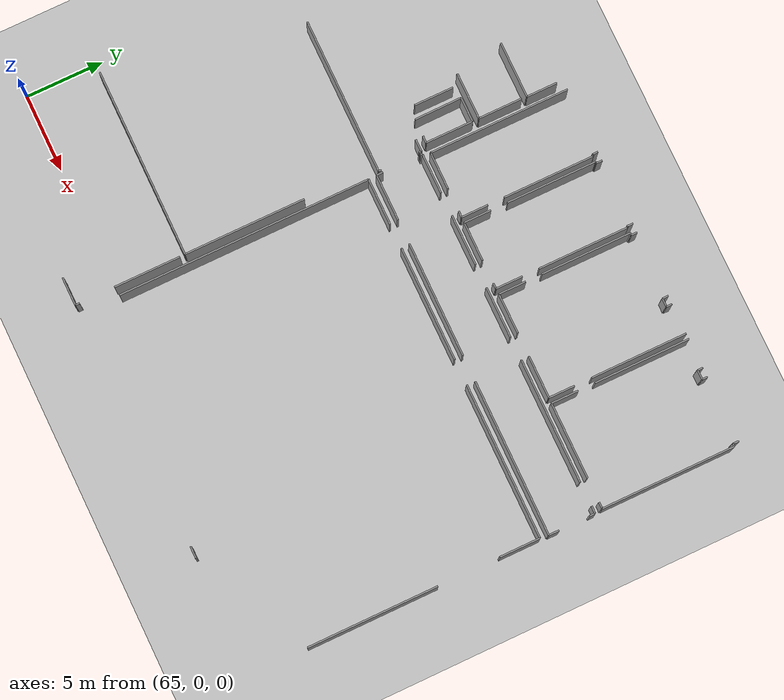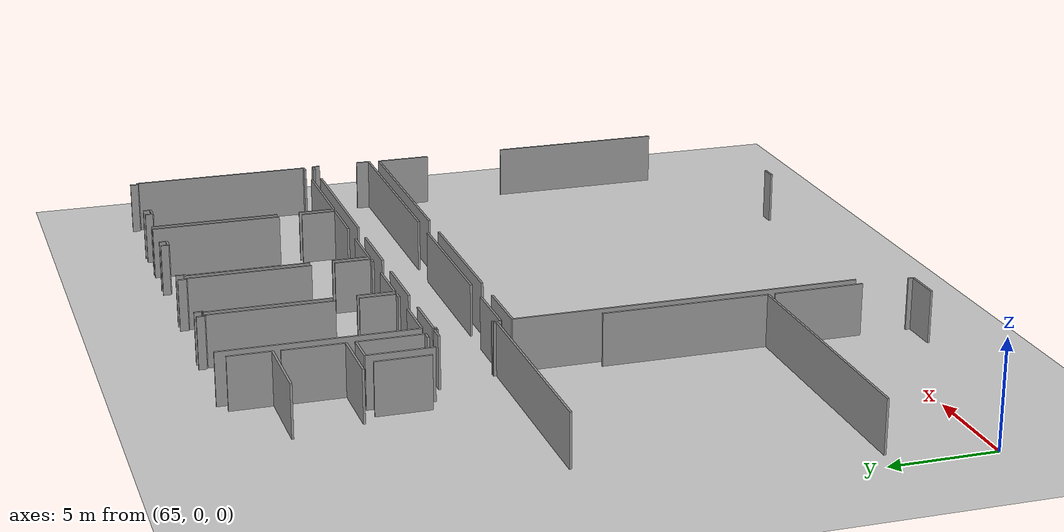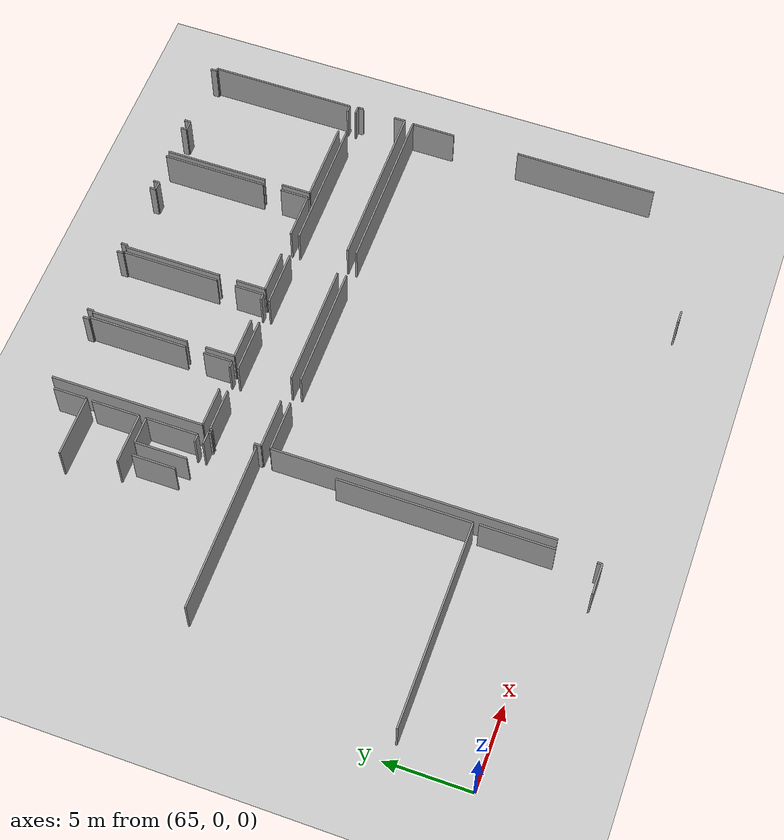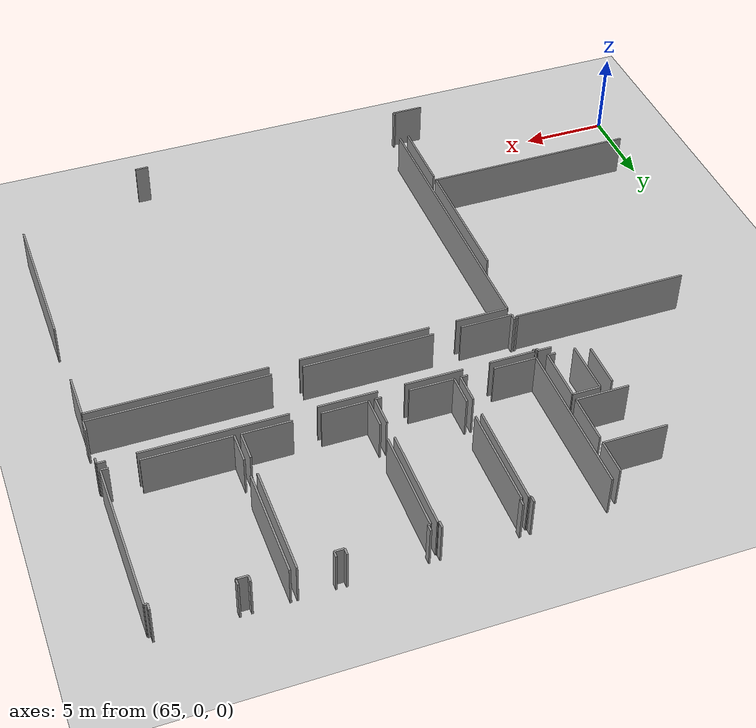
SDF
<sdf version="1.6">
 <world name="default">
  <model name="ground_plane">
   <static>1</static>
   <link name="link">
    <collision name="collision">
     <geometry><plane><normal>0 0 1</normal><size>100 100</size></plane></geometry>
     <surface><friction><ode><mu>100</mu><mu2>50</mu2></ode></friction></surface>
    </collision>
    <visual name="visual">
     <cast_shadows>0</cast_shadows>
     <geometry><plane><normal>0 0 1</normal><size>100 100</size></plane></geometry>
     <material>
      <script><uri>file://media/materials/scripts/gazebo.material</uri><name>Gazebo/Grey</name></script>
     </material>
    </visual>
   </link>
  </model>
  <model name="50010535_PLAN1">
   <static>1</static>
   <link name="Wall_648">
    <collision name="Wall_648_Collision">
     <geometry><box><size>1.98954276602 0.1 2.5</size></box></geometry>
     <pose>0.99477138301 0 1.25 0 0 0</pose>
    </collision>
    <visual name="Wall_648_Visual">
     <pose>0.99477138301 0 1.25 0 0 0</pose>
     <geometry><box><size>1.98954276602 0.1 2.5</size></box></geometry>
     <material>
      <script><uri>file://media/materials/scripts/gazebo.material</uri><name>Gazebo/Grey</name></script>
      <ambient>1 1 1 1</ambient>
     </material>
    </visual>
    <pose>180.918533954 -0.41320686391 0 0 0 -1.57079632679</pose>
   </link>
   <link name="Wall_649">
    <collision name="Wall_649_Collision">
     <geometry><box><size>3.6360171026 0.1 2.5</size></box></geometry>
     <pose>1.8180085513 0 1.25 0 0 0</pose>
    </collision>
    <visual name="Wall_649_Visual">
     <pose>1.8180085513 0 1.25 0 0 0</pose>
     <geometry><box><size>3.6360171026 0.1 2.5</size></box></geometry>
     <material>
      <script><uri>file://media/materials/scripts/gazebo.material</uri><name>Gazebo/Grey</name></script>
      <ambient>1 1 1 1</ambient>
     </material>
    </visual>
    <pose>180.918533954 -2.40274962993 0 0 0 3.14159265359</pose>
   </link>
   <link name="Wall_653">
    <collision name="Wall_653_Collision">
     <geometry><box><size>2.82866273197 0.1 2.5</size></box></geometry>
     <pose>1.41433136598 0 1.25 0 0 0</pose>
    </collision>
    <visual name="Wall_653_Visual">
     <pose>1.41433136598 0 1.25 0 0 0</pose>
     <geometry><box><size>2.82866273197 0.1 2.5</size></box></geometry>
     <material>
      <script><uri>file://media/materials/scripts/gazebo.material</uri><name>Gazebo/Grey</name></script>
      <ambient>1 1 1 1</ambient>
     </material>
    </visual>
    <pose>180.890071981 -2.74480156033 0 0 0 -1.57079632679</pose>
   </link>
   <link name="Wall_654">
    <collision name="Wall_654_Collision">
     <geometry><box><size>3.01519030768 0.1 2.5</size></box></geometry>
     <pose>1.50759515384 0 1.25 0 0 0</pose>
    </collision>
    <visual name="Wall_654_Visual">
     <pose>1.50759515384 0 1.25 0 0 0</pose>
     <geometry><box><size>3.01519030768 0.1 2.5</size></box></geometry>
     <material>
      <script><uri>file://media/materials/scripts/gazebo.material</uri><name>Gazebo/Grey</name></script>
      <ambient>1 1 1 1</ambient>
     </material>
    </visual>
    <pose>180.890071981 -5.57346429229 0 0 0 3.14159265359</pose>
   </link>
   <link name="Wall_666">
    <collision name="Wall_666_Collision">
     <geometry><box><size>2.55039611697 0.1 2.5</size></box></geometry>
     <pose>1.27519805849 0 1.25 0 0 0</pose>
    </collision>
    <visual name="Wall_666_Visual">
     <pose>1.27519805849 0 1.25 0 0 0</pose>
     <geometry><box><size>2.55039611697 0.1 2.5</size></box></geometry>
     <material>
      <script><uri>file://media/materials/scripts/gazebo.material</uri><name>Gazebo/Grey</name></script>
      <ambient>1 1 1 1</ambient>
     </material>
    </visual>
    <pose>178.525186941 -6.16989511 0 0 0 -1.57079632679</pose>
   </link>
   <link name="Wall_670">
    <collision name="Wall_670_Collision">
     <geometry><box><size>1.58955038976 0.1 2.5</size></box></geometry>
     <pose>0.794775194882 0 1.25 0 0 0</pose>
    </collision>
    <visual name="Wall_670_Visual">
     <pose>0.794775194882 0 1.25 0 0 0</pose>
     <geometry><box><size>1.58955038976 0.1 2.5</size></box></geometry>
     <material>
      <script><uri>file://media/materials/scripts/gazebo.material</uri><name>Gazebo/Grey</name></script>
      <ambient>1 1 1 1</ambient>
     </material>
    </visual>
    <pose>179.300521591 -5.99480314861 0 0 0 0.0</pose>
   </link>
   <link name="Wall_671">
    <collision name="Wall_671_Collision">
     <geometry><box><size>3.06957300687 0.1 2.5</size></box></geometry>
     <pose>1.53478650343 0 1.25 0 0 0</pose>
    </collision>
    <visual name="Wall_671_Visual">
     <pose>1.53478650343 0 1.25 0 0 0</pose>
     <geometry><box><size>3.06957300687 0.1 2.5</size></box></geometry>
     <material>
      <script><uri>file://media/materials/scripts/gazebo.material</uri><name>Gazebo/Grey</name></script>
      <ambient>1 1 1 1</ambient>
     </material>
    </visual>
    <pose>180.890071981 -5.99480314861 0 0 0 -1.57079632679</pose>
   </link>
   <link name="Wall_672">
    <collision name="Wall_672_Collision">
     <geometry><box><size>0.442431211603 0.1 2.5</size></box></geometry>
     <pose>0.221215605802 0 1.25 0 0 0</pose>
    </collision>
    <visual name="Wall_672_Visual">
     <pose>0.221215605802 0 1.25 0 0 0</pose>
     <geometry><box><size>0.442431211603 0.1 2.5</size></box></geometry>
     <material>
      <script><uri>file://media/materials/scripts/gazebo.material</uri><name>Gazebo/Grey</name></script>
      <ambient>1 1 1 1</ambient>
     </material>
    </visual>
    <pose>180.890071981 -9.06437615547 0 0 0 3.14159265359</pose>
   </link>
   <link name="Wall_673">
    <collision name="Wall_673_Collision">
     <geometry><box><size>3.06968460388 0.1 2.5</size></box></geometry>
     <pose>1.53484230194 0 1.25 0 0 0</pose>
    </collision>
    <visual name="Wall_673_Visual">
     <pose>1.53484230194 0 1.25 0 0 0</pose>
     <geometry><box><size>3.06968460388 0.1 2.5</size></box></geometry>
     <material>
      <script><uri>file://media/materials/scripts/gazebo.material</uri><name>Gazebo/Grey</name></script>
      <ambient>1 1 1 1</ambient>
     </material>
    </visual>
    <pose>179.326696442 -9.06437615547 0 0 0 1.57932331608</pose>
   </link>
   <link name="Wall_690">
    <collision name="Wall_690_Collision">
     <geometry><box><size>0.779400646748 0.1 2.5</size></box></geometry>
     <pose>0.389700323374 0 1.25 0 0 0</pose>
    </collision>
    <visual name="Wall_690_Visual">
     <pose>0.389700323374 0 1.25 0 0 0</pose>
     <geometry><box><size>0.779400646748 0.1 2.5</size></box></geometry>
     <material>
      <script><uri>file://media/materials/scripts/gazebo.material</uri><name>Gazebo/Grey</name></script>
      <ambient>1 1 1 1</ambient>
     </material>
    </visual>
    <pose>180.461109382 -9.54594258051 0 0 0 0.0</pose>
   </link>
   <link name="Wall_691">
    <collision name="Wall_691_Collision">
     <geometry><box><size>0.165943469947 0.1 2.5</size></box></geometry>
     <pose>0.0829717349733 0 1.25 0 0 0</pose>
    </collision>
    <visual name="Wall_691_Visual">
     <pose>0.0829717349733 0 1.25 0 0 0</pose>
     <geometry><box><size>0.165943469947 0.1 2.5</size></box></geometry>
     <material>
      <script><uri>file://media/materials/scripts/gazebo.material</uri><name>Gazebo/Grey</name></script>
      <ambient>1 1 1 1</ambient>
     </material>
    </visual>
    <pose>181.240510028 -9.54594258051 0 0 0 -1.57079632679</pose>
   </link>
   <link name="Wall_692">
    <collision name="Wall_692_Collision">
     <geometry><box><size>0.175854335686 0.1 2.5</size></box></geometry>
     <pose>0.087927167843 0 1.25 0 0 0</pose>
    </collision>
    <visual name="Wall_692_Visual">
     <pose>0.087927167843 0 1.25 0 0 0</pose>
     <geometry><box><size>0.175854335686 0.1 2.5</size></box></geometry>
     <material>
      <script><uri>file://media/materials/scripts/gazebo.material</uri><name>Gazebo/Grey</name></script>
      <ambient>1 1 1 1</ambient>
     </material>
    </visual>
    <pose>181.240510028 -12.1944308558 0 0 0 -1.57079632679</pose>
   </link>
   <link name="Wall_693">
    <collision name="Wall_693_Collision">
     <geometry><box><size>10.0801128314 0.1 2.5</size></box></geometry>
     <pose>5.0400564157 0 1.25 0 0 0</pose>
    </collision>
    <visual name="Wall_693_Visual">
     <pose>5.0400564157 0 1.25 0 0 0</pose>
     <geometry><box><size>10.0801128314 0.1 2.5</size></box></geometry>
     <material>
      <script><uri>file://media/materials/scripts/gazebo.material</uri><name>Gazebo/Grey</name></script>
      <ambient>1 1 1 1</ambient>
     </material>
    </visual>
    <pose>181.240510028 -12.3702851915 0 0 0 3.14159265359</pose>
   </link>
   <link name="Wall_701">
    <collision name="Wall_701_Collision">
     <geometry><box><size>7.83568292853 0.1 2.5</size></box></geometry>
     <pose>3.91784146427 0 1.25 0 0 0</pose>
    </collision>
    <visual name="Wall_701_Visual">
     <pose>3.91784146427 0 1.25 0 0 0</pose>
     <geometry><box><size>7.83568292853 0.1 2.5</size></box></geometry>
     <material>
      <script><uri>file://media/materials/scripts/gazebo.material</uri><name>Gazebo/Grey</name></script>
      <ambient>1 1 1 1</ambient>
     </material>
    </visual>
    <pose>180.895154476 -17.1038671436 0 0 0 -1.57079632679</pose>
   </link>
   <link name="Wall_702">
    <collision name="Wall_702_Collision">
     <geometry><box><size>12.2330578197 0.1 2.5</size></box></geometry>
     <pose>6.11652890987 0 1.25 0 0 0</pose>
    </collision>
    <visual name="Wall_702_Visual">
     <pose>6.11652890987 0 1.25 0 0 0</pose>
     <geometry><box><size>12.2330578197 0.1 2.5</size></box></geometry>
     <material>
      <script><uri>file://media/materials/scripts/gazebo.material</uri><name>Gazebo/Grey</name></script>
      <ambient>1 1 1 1</ambient>
     </material>
    </visual>
    <pose>180.895154476 -24.9395500721 0 0 0 3.14159265359</pose>
   </link>
   <link name="Wall_756">
    <collision name="Wall_756_Collision">
     <geometry><box><size>3.02332230008 0.1 2.5</size></box></geometry>
     <pose>1.51166115004 0 1.25 0 0 0</pose>
    </collision>
    <visual name="Wall_756_Visual">
     <pose>1.51166115004 0 1.25 0 0 0</pose>
     <geometry><box><size>3.02332230008 0.1 2.5</size></box></geometry>
     <material>
      <script><uri>file://media/materials/scripts/gazebo.material</uri><name>Gazebo/Grey</name></script>
      <ambient>1 1 1 1</ambient>
     </material>
    </visual>
    <pose>181.440252092 -13.1235109877 0 0 0 0.0</pose>
   </link>
   <link name="Wall_757">
    <collision name="Wall_757_Collision">
     <geometry><box><size>7.38689859787 0.1 2.5</size></box></geometry>
     <pose>3.69344929893 0 1.25 0 0 0</pose>
    </collision>
    <visual name="Wall_757_Visual">
     <pose>3.69344929893 0 1.25 0 0 0</pose>
     <geometry><box><size>7.38689859787 0.1 2.5</size></box></geometry>
     <material>
      <script><uri>file://media/materials/scripts/gazebo.material</uri><name>Gazebo/Grey</name></script>
      <ambient>1 1 1 1</ambient>
     </material>
    </visual>
    <pose>186.050583534 -13.1235109877 0 0 0 0.0</pose>
   </link>
   <link name="Wall_758">
    <collision name="Wall_758_Collision">
     <geometry><box><size>10.0325915008 0.1 2.5</size></box></geometry>
     <pose>5.0162957504 0 1.25 0 0 0</pose>
    </collision>
    <visual name="Wall_758_Visual">
     <pose>5.0162957504 0 1.25 0 0 0</pose>
     <geometry><box><size>10.0325915008 0.1 2.5</size></box></geometry>
     <material>
      <script><uri>file://media/materials/scripts/gazebo.material</uri><name>Gazebo/Grey</name></script>
      <ambient>1 1 1 1</ambient>
     </material>
    </visual>
    <pose>195.10860657 -13.1235109877 0 0 0 0.0</pose>
   </link>
   <link name="Wall_759">
    <collision name="Wall_759_Collision">
     <geometry><box><size>2.62510879716 0.1 2.5</size></box></geometry>
     <pose>1.31255439858 0 1.25 0 0 0</pose>
    </collision>
    <visual name="Wall_759_Visual">
     <pose>1.31255439858 0 1.25 0 0 0</pose>
     <geometry><box><size>2.62510879716 0.1 2.5</size></box></geometry>
     <material>
      <script><uri>file://media/materials/scripts/gazebo.material</uri><name>Gazebo/Grey</name></script>
      <ambient>1 1 1 1</ambient>
     </material>
    </visual>
    <pose>205.141198071 -13.1235109877 0 0 0 -1.57079632679</pose>
   </link>
   <link name="Wall_760">
    <collision name="Wall_760_Collision">
     <geometry><box><size>8.45015660438 0.1 2.5</size></box></geometry>
     <pose>4.22507830219 0 1.25 0 0 0</pose>
    </collision>
    <visual name="Wall_760_Visual">
     <pose>4.22507830219 0 1.25 0 0 0</pose>
     <geometry><box><size>8.45015660438 0.1 2.5</size></box></geometry>
     <material>
      <script><uri>file://media/materials/scripts/gazebo.material</uri><name>Gazebo/Grey</name></script>
      <ambient>1 1 1 1</ambient>
     </material>
    </visual>
    <pose>205.141198071 -19.769381778 0 0 0 -1.57079632679</pose>
   </link>
   <link name="Wall_762">
    <collision name="Wall_762_Collision">
     <geometry><box><size>0.769235656245 0.1 2.5</size></box></geometry>
     <pose>0.384617828123 0 1.25 0 0 0</pose>
    </collision>
    <visual name="Wall_762_Visual">
     <pose>0.384617828123 0 1.25 0 0 0</pose>
     <geometry><box><size>0.769235656245 0.1 2.5</size></box></geometry>
     <material>
      <script><uri>file://media/materials/scripts/gazebo.material</uri><name>Gazebo/Grey</name></script>
      <ambient>1 1 1 1</ambient>
     </material>
    </visual>
    <pose>197.611735482 -31.9127335565 0 0 0 3.14159265359</pose>
   </link>
   <link name="Wall_763">
    <collision name="Wall_763_Collision">
     <geometry><box><size>16.3697427509 0.1 2.5</size></box></geometry>
     <pose>8.18487137546 0 1.25 0 0 0</pose>
    </collision>
    <visual name="Wall_763_Visual">
     <pose>8.18487137546 0 1.25 0 0 0</pose>
     <geometry><box><size>16.3697427509 0.1 2.5</size></box></geometry>
     <material>
      <script><uri>file://media/materials/scripts/gazebo.material</uri><name>Gazebo/Grey</name></script>
      <ambient>1 1 1 1</ambient>
     </material>
    </visual>
    <pose>181.477354307 -29.4932116923 0 0 0 1.57306284055</pose>
   </link>
   <link name="Wall_766">
    <collision name="Wall_766_Collision">
     <geometry><box><size>4.28047750043 0.1 2.5</size></box></geometry>
     <pose>2.14023875021 0 1.25 0 0 0</pose>
    </collision>
    <visual name="Wall_766_Visual">
     <pose>2.14023875021 0 1.25 0 0 0</pose>
     <geometry><box><size>4.28047750043 0.1 2.5</size></box></geometry>
     <material>
      <script><uri>file://media/materials/scripts/gazebo.material</uri><name>Gazebo/Grey</name></script>
      <ambient>1 1 1 1</ambient>
     </material>
    </visual>
    <pose>180.908368964 -25.276773632 0 0 0 -1.57079632679</pose>
   </link>
   <link name="Wall_767">
    <collision name="Wall_767_Collision">
     <geometry><box><size>0.270896996881 0.1 2.5</size></box></geometry>
     <pose>0.13544849844 0 1.25 0 0 0</pose>
    </collision>
    <visual name="Wall_767_Visual">
     <pose>0.13544849844 0 1.25 0 0 0</pose>
     <geometry><box><size>0.270896996881 0.1 2.5</size></box></geometry>
     <material>
      <script><uri>file://media/materials/scripts/gazebo.material</uri><name>Gazebo/Grey</name></script>
      <ambient>1 1 1 1</ambient>
     </material>
    </visual>
    <pose>180.908368964 -31.8329383811 0 0 0 -1.57079632679</pose>
   </link>
   <link name="Wall_768">
    <collision name="Wall_768_Collision">
     <geometry><box><size>1.82639466846 0.1 2.5</size></box></geometry>
     <pose>0.913197334231 0 1.25 0 0 0</pose>
    </collision>
    <visual name="Wall_768_Visual">
     <pose>0.913197334231 0 1.25 0 0 0</pose>
     <geometry><box><size>1.82639466846 0.1 2.5</size></box></geometry>
     <material>
      <script><uri>file://media/materials/scripts/gazebo.material</uri><name>Gazebo/Grey</name></script>
      <ambient>1 1 1 1</ambient>
     </material>
    </visual>
    <pose>180.908368964 -32.103835378 0 0 0 3.14159265359</pose>
   </link>
   <link name="Wall_774">
    <collision name="Wall_774_Collision">
     <geometry><box><size>9.06412203071 0.1 2.5</size></box></geometry>
     <pose>4.53206101536 0 1.25 0 0 0</pose>
    </collision>
    <visual name="Wall_774_Visual">
     <pose>4.53206101536 0 1.25 0 0 0</pose>
     <geometry><box><size>9.06412203071 0.1 2.5</size></box></geometry>
     <material>
      <script><uri>file://media/materials/scripts/gazebo.material</uri><name>Gazebo/Grey</name></script>
      <ambient>1 1 1 1</ambient>
     </material>
    </visual>
    <pose>181.552829362 -9.07860714218 0 0 0 1.57079632679</pose>
   </link>
   <link name="Wall_775">
    <collision name="Wall_775_Collision">
     <geometry><box><size>0.370259779039 0.1 2.5</size></box></geometry>
     <pose>0.185129889519 0 1.25 0 0 0</pose>
    </collision>
    <visual name="Wall_775_Visual">
     <pose>0.185129889519 0 1.25 0 0 0</pose>
     <geometry><box><size>0.370259779039 0.1 2.5</size></box></geometry>
     <material>
      <script><uri>file://media/materials/scripts/gazebo.material</uri><name>Gazebo/Grey</name></script>
      <ambient>1 1 1 1</ambient>
     </material>
    </visual>
    <pose>185.763676677 -0.0144851114655 0 0 0 -1.57079632679</pose>
   </link>
   <link name="Wall_776">
    <collision name="Wall_776_Collision">
     <geometry><box><size>0.114102018386 0.1 2.5</size></box></geometry>
     <pose>0.057051009193 0 1.25 0 0 0</pose>
    </collision>
    <visual name="Wall_776_Visual">
     <pose>0.057051009193 0 1.25 0 0 0</pose>
     <geometry><box><size>0.114102018386 0.1 2.5</size></box></geometry>
     <material>
      <script><uri>file://media/materials/scripts/gazebo.material</uri><name>Gazebo/Grey</name></script>
      <ambient>1 1 1 1</ambient>
     </material>
    </visual>
    <pose>185.763676677 -0.384744890504 0 0 0 0.0</pose>
   </link>
   <link name="Wall_777">
    <collision name="Wall_777_Collision">
     <geometry><box><size>5.88603775023 0.1 2.5</size></box></geometry>
     <pose>2.94301887512 0 1.25 0 0 0</pose>
    </collision>
    <visual name="Wall_777_Visual">
     <pose>2.94301887512 0 1.25 0 0 0</pose>
     <geometry><box><size>5.88603775023 0.1 2.5</size></box></geometry>
     <material>
      <script><uri>file://media/materials/scripts/gazebo.material</uri><name>Gazebo/Grey</name></script>
      <ambient>1 1 1 1</ambient>
     </material>
    </visual>
    <pose>185.877778695 -0.384744890504 0 0 0 -1.57079632679</pose>
   </link>
   <link name="Wall_778">
    <collision name="Wall_778_Collision">
     <geometry><box><size>1.72881075964 0.1 2.5</size></box></geometry>
     <pose>0.864405379821 0 1.25 0 0 0</pose>
    </collision>
    <visual name="Wall_778_Visual">
     <pose>0.864405379821 0 1.25 0 0 0</pose>
     <geometry><box><size>1.72881075964 0.1 2.5</size></box></geometry>
     <material>
      <script><uri>file://media/materials/scripts/gazebo.material</uri><name>Gazebo/Grey</name></script>
      <ambient>1 1 1 1</ambient>
     </material>
    </visual>
    <pose>185.877778695 -7.35742012541 0 0 0 -1.57079632679</pose>
   </link>
   <link name="Wall_779">
    <collision name="Wall_779_Collision">
     <geometry><box><size>0.398975877207 0.1 2.5</size></box></geometry>
     <pose>0.199487938603 0 1.25 0 0 0</pose>
    </collision>
    <visual name="Wall_779_Visual">
     <pose>0.199487938603 0 1.25 0 0 0</pose>
     <geometry><box><size>0.398975877207 0.1 2.5</size></box></geometry>
     <material>
      <script><uri>file://media/materials/scripts/gazebo.material</uri><name>Gazebo/Grey</name></script>
      <ambient>1 1 1 1</ambient>
     </material>
    </visual>
    <pose>185.877778695 -9.08623088505 0 0 0 3.14159265359</pose>
   </link>
   <link name="Wall_780">
    <collision name="Wall_780_Collision">
     <geometry><box><size>2.42436222174 0.1 2.5</size></box></geometry>
     <pose>1.21218111087 0 1.25 0 0 0</pose>
    </collision>
    <visual name="Wall_780_Visual">
     <pose>1.21218111087 0 1.25 0 0 0</pose>
     <geometry><box><size>2.42436222174 0.1 2.5</size></box></geometry>
     <material>
      <script><uri>file://media/materials/scripts/gazebo.material</uri><name>Gazebo/Grey</name></script>
      <ambient>1 1 1 1</ambient>
     </material>
    </visual>
    <pose>183.977179596 -9.08623088505 0 0 0 3.13844800987</pose>
   </link>
   <link name="Wall_781">
    <collision name="Wall_781_Collision">
     <geometry><box><size>1.74837836636 0.1 2.5</size></box></geometry>
     <pose>0.874189183179 0 1.25 0 0 0</pose>
    </collision>
    <visual name="Wall_781_Visual">
     <pose>0.874189183179 0 1.25 0 0 0</pose>
     <geometry><box><size>1.74837836636 0.1 2.5</size></box></geometry>
     <material>
      <script><uri>file://media/materials/scripts/gazebo.material</uri><name>Gazebo/Grey</name></script>
      <ambient>1 1 1 1</ambient>
     </material>
    </visual>
    <pose>186.237619359 -9.08089426504 0 0 0 1.57079632679</pose>
   </link>
   <link name="Wall_782">
    <collision name="Wall_782_Collision">
     <geometry><box><size>5.81666169006 0.1 2.5</size></box></geometry>
     <pose>2.90833084503 0 1.25 0 0 0</pose>
    </collision>
    <visual name="Wall_782_Visual">
     <pose>2.90833084503 0 1.25 0 0 0</pose>
     <geometry><box><size>5.81666169006 0.1 2.5</size></box></geometry>
     <material>
      <script><uri>file://media/materials/scripts/gazebo.material</uri><name>Gazebo/Grey</name></script>
      <ambient>1 1 1 1</ambient>
     </material>
    </visual>
    <pose>186.237619359 -6.22021181299 0 0 0 1.57079632679</pose>
   </link>
   <link name="Wall_783">
    <collision name="Wall_783_Collision">
     <geometry><box><size>0.099871031683 0.1 2.5</size></box></geometry>
     <pose>0.0499355158415 0 1.25 0 0 0</pose>
    </collision>
    <visual name="Wall_783_Visual">
     <pose>0.0499355158415 0 1.25 0 0 0</pose>
     <geometry><box><size>0.099871031683 0.1 2.5</size></box></geometry>
     <material>
      <script><uri>file://media/materials/scripts/gazebo.material</uri><name>Gazebo/Grey</name></script>
      <ambient>1 1 1 1</ambient>
     </material>
    </visual>
    <pose>186.237619359 -0.403550122933 0 0 0 0.0</pose>
   </link>
   <link name="Wall_784">
    <collision name="Wall_784_Collision">
     <geometry><box><size>0.390081510518 0.1 2.5</size></box></geometry>
     <pose>0.195040755259 0 1.25 0 0 0</pose>
    </collision>
    <visual name="Wall_784_Visual">
     <pose>0.195040755259 0 1.25 0 0 0</pose>
     <geometry><box><size>0.390081510518 0.1 2.5</size></box></geometry>
     <material>
      <script><uri>file://media/materials/scripts/gazebo.material</uri><name>Gazebo/Grey</name></script>
      <ambient>1 1 1 1</ambient>
     </material>
    </visual>
    <pose>186.337490391 -0.403550122933 0 0 0 1.57079632679</pose>
   </link>
   <link name="Wall_785">
    <collision name="Wall_785_Collision">
     <geometry><box><size>0.392368633381 0.1 2.5</size></box></geometry>
     <pose>0.19618431669 0 1.25 0 0 0</pose>
    </collision>
    <visual name="Wall_785_Visual">
     <pose>0.19618431669 0 1.25 0 0 0</pose>
     <geometry><box><size>0.392368633381 0.1 2.5</size></box></geometry>
     <material>
      <script><uri>file://media/materials/scripts/gazebo.material</uri><name>Gazebo/Grey</name></script>
      <ambient>1 1 1 1</ambient>
     </material>
    </visual>
    <pose>190.564855816 -0.0134686124153 0 0 0 -1.57079632679</pose>
   </link>
   <link name="Wall_786">
    <collision name="Wall_786_Collision">
     <geometry><box><size>0.0785245516286 0.1 2.5</size></box></geometry>
     <pose>0.0392622758143 0 1.25 0 0 0</pose>
    </collision>
    <visual name="Wall_786_Visual">
     <pose>0.0392622758143 0 1.25 0 0 0</pose>
     <geometry><box><size>0.0785245516286 0.1 2.5</size></box></geometry>
     <material>
      <script><uri>file://media/materials/scripts/gazebo.material</uri><name>Gazebo/Grey</name></script>
      <ambient>1 1 1 1</ambient>
     </material>
    </visual>
    <pose>190.564855816 -0.405837245796 0 0 0 0.0</pose>
   </link>
   <link name="Wall_787">
    <collision name="Wall_787_Collision">
     <geometry><box><size>5.84232829107 0.1 2.5</size></box></geometry>
     <pose>2.92116414554 0 1.25 0 0 0</pose>
    </collision>
    <visual name="Wall_787_Visual">
     <pose>2.92116414554 0 1.25 0 0 0</pose>
     <geometry><box><size>5.84232829107 0.1 2.5</size></box></geometry>
     <material>
      <script><uri>file://media/materials/scripts/gazebo.material</uri><name>Gazebo/Grey</name></script>
      <ambient>1 1 1 1</ambient>
     </material>
    </visual>
    <pose>190.643380368 -0.405837245796 0 0 0 -1.57079632679</pose>
   </link>
   <link name="Wall_788">
    <collision name="Wall_788_Collision">
     <geometry><box><size>1.73745100157 0.1 2.5</size></box></geometry>
     <pose>0.868725500785 0 1.25 0 0 0</pose>
    </collision>
    <visual name="Wall_788_Visual">
     <pose>0.868725500785 0 1.25 0 0 0</pose>
     <geometry><box><size>1.73745100157 0.1 2.5</size></box></geometry>
     <material>
      <script><uri>file://media/materials/scripts/gazebo.material</uri><name>Gazebo/Grey</name></script>
      <ambient>1 1 1 1</ambient>
     </material>
    </visual>
    <pose>190.643380368 -7.34877988348 0 0 0 -1.57079632679</pose>
   </link>
   <link name="Wall_789">
    <collision name="Wall_789_Collision">
     <geometry><box><size>0.364160784737 0.1 2.5</size></box></geometry>
     <pose>0.182080392369 0 1.25 0 0 0</pose>
    </collision>
    <visual name="Wall_789_Visual">
     <pose>0.182080392369 0 1.25 0 0 0</pose>
     <geometry><box><size>0.364160784737 0.1 2.5</size></box></geometry>
     <material>
      <script><uri>file://media/materials/scripts/gazebo.material</uri><name>Gazebo/Grey</name></script>
      <ambient>1 1 1 1</ambient>
     </material>
    </visual>
    <pose>190.643380368 -9.08623088505 0 0 0 3.14159265359</pose>
   </link>
   <link name="Wall_790">
    <collision name="Wall_790_Collision">
     <geometry><box><size>2.53439187555 0.1 2.5</size></box></geometry>
     <pose>1.26719593777 0 1.25 0 0 0</pose>
    </collision>
    <visual name="Wall_790_Visual">
     <pose>1.26719593777 0 1.25 0 0 0</pose>
     <geometry><box><size>2.53439187555 0.1 2.5</size></box></geometry>
     <material>
      <script><uri>file://media/materials/scripts/gazebo.material</uri><name>Gazebo/Grey</name></script>
      <ambient>1 1 1 1</ambient>
     </material>
    </visual>
    <pose>188.772005616 -9.08623088505 0 0 0 3.13948697135</pose>
   </link>
   <link name="Wall_791">
    <collision name="Wall_791_Collision">
     <geometry><box><size>1.7603222302 0.1 2.5</size></box></geometry>
     <pose>0.880161115099 0 1.25 0 0 0</pose>
    </collision>
    <visual name="Wall_791_Visual">
     <pose>0.880161115099 0 1.25 0 0 0</pose>
     <geometry><box><size>1.7603222302 0.1 2.5</size></box></geometry>
     <material>
      <script><uri>file://media/materials/scripts/gazebo.material</uri><name>Gazebo/Grey</name></script>
      <ambient>1 1 1 1</ambient>
     </material>
    </visual>
    <pose>191.009828275 -9.06971277549 0 0 0 1.57079632679</pose>
   </link>
   <link name="Wall_792">
    <collision name="Wall_792_Collision">
     <geometry><box><size>5.83953291869 0.1 2.5</size></box></geometry>
     <pose>2.91976645934 0 1.25 0 0 0</pose>
    </collision>
    <visual name="Wall_792_Visual">
     <pose>2.91976645934 0 1.25 0 0 0</pose>
     <geometry><box><size>5.83953291869 0.1 2.5</size></box></geometry>
     <material>
      <script><uri>file://media/materials/scripts/gazebo.material</uri><name>Gazebo/Grey</name></script>
      <ambient>1 1 1 1</ambient>
     </material>
    </visual>
    <pose>191.009828275 -6.24587841401 0 0 0 1.57079632679</pose>
   </link>
   <link name="Wall_793">
    <collision name="Wall_793_Collision">
     <geometry><box><size>0.138752120353 0.1 2.5</size></box></geometry>
     <pose>0.0693760601767 0 1.25 0 0 0</pose>
    </collision>
    <visual name="Wall_793_Visual">
     <pose>0.0693760601767 0 1.25 0 0 0</pose>
     <geometry><box><size>0.138752120353 0.1 2.5</size></box></geometry>
     <material>
      <script><uri>file://media/materials/scripts/gazebo.material</uri><name>Gazebo/Grey</name></script>
      <ambient>1 1 1 1</ambient>
     </material>
    </visual>
    <pose>191.009828275 -0.406345495321 0 0 0 0.0</pose>
   </link>
   <link name="Wall_794">
    <collision name="Wall_794_Collision">
     <geometry><box><size>0.384744890504 0.1 2.5</size></box></geometry>
     <pose>0.192372445252 0 1.25 0 0 0</pose>
    </collision>
    <visual name="Wall_794_Visual">
     <pose>0.192372445252 0 1.25 0 0 0</pose>
     <geometry><box><size>0.384744890504 0.1 2.5</size></box></geometry>
     <material>
      <script><uri>file://media/materials/scripts/gazebo.material</uri><name>Gazebo/Grey</name></script>
      <ambient>1 1 1 1</ambient>
     </material>
    </visual>
    <pose>191.148580396 -0.406345495321 0 0 0 1.57079632679</pose>
   </link>
   <link name="Wall_795">
    <collision name="Wall_795_Collision">
     <geometry><box><size>0.367718531413 0.1 2.5</size></box></geometry>
     <pose>0.183859265706 0 1.25 0 0 0</pose>
    </collision>
    <visual name="Wall_795_Visual">
     <pose>0.183859265706 0 1.25 0 0 0</pose>
     <geometry><box><size>0.367718531413 0.1 2.5</size></box></geometry>
     <material>
      <script><uri>file://media/materials/scripts/gazebo.material</uri><name>Gazebo/Grey</name></script>
      <ambient>1 1 1 1</ambient>
     </material>
    </visual>
    <pose>195.384840187 -0.0216006048169 0 0 0 -1.57079632679</pose>
   </link>
   <link name="Wall_796">
    <collision name="Wall_796_Collision">
     <geometry><box><size>0.536965623273 0.1 2.5</size></box></geometry>
     <pose>0.268482811636 0 1.25 0 0 0</pose>
    </collision>
    <visual name="Wall_796_Visual">
     <pose>0.268482811636 0 1.25 0 0 0</pose>
     <geometry><box><size>0.536965623273 0.1 2.5</size></box></geometry>
     <material>
      <script><uri>file://media/materials/scripts/gazebo.material</uri><name>Gazebo/Grey</name></script>
      <ambient>1 1 1 1</ambient>
     </material>
    </visual>
    <pose>195.384840187 -0.38931913623 0 0 0 0.0</pose>
   </link>
   <link name="Wall_797">
    <collision name="Wall_797_Collision">
     <geometry><box><size>0.355266418048 0.1 2.5</size></box></geometry>
     <pose>0.177633209024 0 1.25 0 0 0</pose>
    </collision>
    <visual name="Wall_797_Visual">
     <pose>0.177633209024 0 1.25 0 0 0</pose>
     <geometry><box><size>0.355266418048 0.1 2.5</size></box></geometry>
     <material>
      <script><uri>file://media/materials/scripts/gazebo.material</uri><name>Gazebo/Grey</name></script>
      <ambient>1 1 1 1</ambient>
     </material>
    </visual>
    <pose>195.921805811 -0.38931913623 0 0 0 1.57079632679</pose>
   </link>
   <link name="Wall_798">
    <collision name="Wall_798_Collision">
     <geometry><box><size>6.21919531394 0.1 2.5</size></box></geometry>
     <pose>3.10959765697 0 1.25 0 0 0</pose>
    </collision>
    <visual name="Wall_798_Visual">
     <pose>3.10959765697 0 1.25 0 0 0</pose>
     <geometry><box><size>6.21919531394 0.1 2.5</size></box></geometry>
     <material>
      <script><uri>file://media/materials/scripts/gazebo.material</uri><name>Gazebo/Grey</name></script>
      <ambient>1 1 1 1</ambient>
     </material>
    </visual>
    <pose>197.869163866 -0.034052718182 0 0 0 -1.57079632679</pose>
   </link>
   <link name="Wall_799">
    <collision name="Wall_799_Collision">
     <geometry><box><size>1.68611779953 0.1 2.5</size></box></geometry>
     <pose>0.843058899767 0 1.25 0 0 0</pose>
    </collision>
    <visual name="Wall_799_Visual">
     <pose>0.843058899767 0 1.25 0 0 0</pose>
     <geometry><box><size>1.68611779953 0.1 2.5</size></box></geometry>
     <material>
      <script><uri>file://media/materials/scripts/gazebo.material</uri><name>Gazebo/Grey</name></script>
      <ambient>1 1 1 1</ambient>
     </material>
    </visual>
    <pose>197.869163866 -7.3764794826 0 0 0 -1.57079632679</pose>
   </link>
   <link name="Wall_800">
    <collision name="Wall_800_Collision">
     <geometry><box><size>2.75013818034 0.1 2.5</size></box></geometry>
     <pose>1.37506909017 0 1.25 0 0 0</pose>
    </collision>
    <visual name="Wall_800_Visual">
     <pose>1.37506909017 0 1.25 0 0 0</pose>
     <geometry><box><size>2.75013818034 0.1 2.5</size></box></geometry>
     <material>
      <script><uri>file://media/materials/scripts/gazebo.material</uri><name>Gazebo/Grey</name></script>
      <ambient>1 1 1 1</ambient>
     </material>
    </visual>
    <pose>197.869163866 -9.06259728214 0 0 0 3.14159265359</pose>
   </link>
   <link name="Wall_801">
    <collision name="Wall_801_Collision">
     <geometry><box><size>2.59081172535 0.1 2.5</size></box></geometry>
     <pose>1.29540586268 0 1.25 0 0 0</pose>
    </collision>
    <visual name="Wall_801_Visual">
     <pose>1.29540586268 0 1.25 0 0 0</pose>
     <geometry><box><size>2.59081172535 0.1 2.5</size></box></geometry>
     <material>
      <script><uri>file://media/materials/scripts/gazebo.material</uri><name>Gazebo/Grey</name></script>
      <ambient>1 1 1 1</ambient>
     </material>
    </visual>
    <pose>193.600630229 -9.06259728214 0 0 0 -3.13884621616</pose>
   </link>
   <link name="Wall_802">
    <collision name="Wall_802_Collision">
     <geometry><box><size>1.74685361778 0.1 2.5</size></box></geometry>
     <pose>0.873426808892 0 1.25 0 0 0</pose>
    </collision>
    <visual name="Wall_802_Visual">
     <pose>0.873426808892 0 1.25 0 0 0</pose>
     <geometry><box><size>1.74685361778 0.1 2.5</size></box></geometry>
     <material>
      <script><uri>file://media/materials/scripts/gazebo.material</uri><name>Gazebo/Grey</name></script>
      <ambient>1 1 1 1</ambient>
     </material>
    </visual>
    <pose>198.226463282 -9.0669174031 0 0 0 1.57079632679</pose>
   </link>
   <link name="Wall_803">
    <collision name="Wall_803_Collision">
     <geometry><box><size>6.18717559386 0.1 2.5</size></box></geometry>
     <pose>3.09358779693 0 1.25 0 0 0</pose>
    </collision>
    <visual name="Wall_803_Visual">
     <pose>3.09358779693 0 1.25 0 0 0</pose>
     <geometry><box><size>6.18717559386 0.1 2.5</size></box></geometry>
     <material>
      <script><uri>file://media/materials/scripts/gazebo.material</uri><name>Gazebo/Grey</name></script>
      <ambient>1 1 1 1</ambient>
     </material>
    </visual>
    <pose>198.226463282 -6.21716231584 0 0 0 1.57079632679</pose>
   </link>
   <link name="Wall_804">
    <collision name="Wall_804_Collision">
     <geometry><box><size>0.355012293285 0.1 2.5</size></box></geometry>
     <pose>0.177506146643 0 1.25 0 0 0</pose>
    </collision>
    <visual name="Wall_804_Visual">
     <pose>0.177506146643 0 1.25 0 0 0</pose>
     <geometry><box><size>0.355012293285 0.1 2.5</size></box></geometry>
     <material>
      <script><uri>file://media/materials/scripts/gazebo.material</uri><name>Gazebo/Grey</name></script>
      <ambient>1 1 1 1</ambient>
     </material>
    </visual>
    <pose>200.1334155 -0.0299867219812 0 0 0 -1.57079632679</pose>
   </link>
   <link name="Wall_805">
    <collision name="Wall_805_Collision">
     <geometry><box><size>0.60634168345 0.1 2.5</size></box></geometry>
     <pose>0.303170841725 0 1.25 0 0 0</pose>
    </collision>
    <visual name="Wall_805_Visual">
     <pose>0.303170841725 0 1.25 0 0 0</pose>
     <geometry><box><size>0.60634168345 0.1 2.5</size></box></geometry>
     <material>
      <script><uri>file://media/materials/scripts/gazebo.material</uri><name>Gazebo/Grey</name></script>
      <ambient>1 1 1 1</ambient>
     </material>
    </visual>
    <pose>200.1334155 -0.384999015267 0 0 0 0.0</pose>
   </link>
   <link name="Wall_806">
    <collision name="Wall_806_Collision">
     <geometry><box><size>0.360603038062 0.1 2.5</size></box></geometry>
     <pose>0.180301519031 0 1.25 0 0 0</pose>
    </collision>
    <visual name="Wall_806_Visual">
     <pose>0.180301519031 0 1.25 0 0 0</pose>
     <geometry><box><size>0.360603038062 0.1 2.5</size></box></geometry>
     <material>
      <script><uri>file://media/materials/scripts/gazebo.material</uri><name>Gazebo/Grey</name></script>
      <ambient>1 1 1 1</ambient>
     </material>
    </visual>
    <pose>200.739757184 -0.384999015267 0 0 0 1.57079632679</pose>
   </link>
   <link name="Wall_807">
    <collision name="Wall_807_Collision">
     <geometry><box><size>0.371276278089 0.1 2.5</size></box></geometry>
     <pose>0.185638139044 0 1.25 0 0 0</pose>
    </collision>
    <visual name="Wall_807_Visual">
     <pose>0.185638139044 0 1.25 0 0 0</pose>
     <geometry><box><size>0.371276278089 0.1 2.5</size></box></geometry>
     <material>
      <script><uri>file://media/materials/scripts/gazebo.material</uri><name>Gazebo/Grey</name></script>
      <ambient>1 1 1 1</ambient>
     </material>
    </visual>
    <pose>204.957974117 -0.024395977205 0 0 0 -1.57079632679</pose>
   </link>
   <link name="Wall_808">
    <collision name="Wall_808_Collision">
     <geometry><box><size>0.173567212823 0.1 2.5</size></box></geometry>
     <pose>0.0867836064116 0 1.25 0 0 0</pose>
    </collision>
    <visual name="Wall_808_Visual">
     <pose>0.0867836064116 0 1.25 0 0 0</pose>
     <geometry><box><size>0.173567212823 0.1 2.5</size></box></geometry>
     <material>
      <script><uri>file://media/materials/scripts/gazebo.material</uri><name>Gazebo/Grey</name></script>
      <ambient>1 1 1 1</ambient>
     </material>
    </visual>
    <pose>204.957974117 -0.395672255294 0 0 0 0.0</pose>
   </link>
   <link name="Wall_809">
    <collision name="Wall_809_Collision">
     <geometry><box><size>8.67175339733 0.1 2.5</size></box></geometry>
     <pose>4.33587669867 0 1.25 0 0 0</pose>
    </collision>
    <visual name="Wall_809_Visual">
     <pose>4.33587669867 0 1.25 0 0 0</pose>
     <geometry><box><size>8.67175339733 0.1 2.5</size></box></geometry>
     <material>
      <script><uri>file://media/materials/scripts/gazebo.material</uri><name>Gazebo/Grey</name></script>
      <ambient>1 1 1 1</ambient>
     </material>
    </visual>
    <pose>205.13154133 -0.395672255294 0 0 0 -1.57079632679</pose>
   </link>
   <link name="Wall_810">
    <collision name="Wall_810_Collision">
     <geometry><box><size>0.41625636106 0.1 2.5</size></box></geometry>
     <pose>0.20812818053 0 1.25 0 0 0</pose>
    </collision>
    <visual name="Wall_810_Visual">
     <pose>0.20812818053 0 1.25 0 0 0</pose>
     <geometry><box><size>0.41625636106 0.1 2.5</size></box></geometry>
     <material>
      <script><uri>file://media/materials/scripts/gazebo.material</uri><name>Gazebo/Grey</name></script>
      <ambient>1 1 1 1</ambient>
     </material>
    </visual>
    <pose>205.13154133 -9.06742565262 0 0 0 3.14159265359</pose>
   </link>
   <link name="Wall_811">
    <collision name="Wall_811_Collision">
     <geometry><box><size>4.91146931214 0.1 2.5</size></box></geometry>
     <pose>2.45573465607 0 1.25 0 0 0</pose>
    </collision>
    <visual name="Wall_811_Visual">
     <pose>2.45573465607 0 1.25 0 0 0</pose>
     <geometry><box><size>4.91146931214 0.1 2.5</size></box></geometry>
     <material>
      <script><uri>file://media/materials/scripts/gazebo.material</uri><name>Gazebo/Grey</name></script>
      <ambient>1 1 1 1</ambient>
     </material>
    </visual>
    <pose>203.137932568 -9.06742565262 0 0 0 3.14148917141</pose>
   </link>
   <link name="Wall_812">
    <collision name="Wall_812_Collision">
     <geometry><box><size>2.58190758753 0.1 2.5</size></box></geometry>
     <pose>1.29095379377 0 1.25 0 0 0</pose>
    </collision>
    <visual name="Wall_812_Visual">
     <pose>1.29095379377 0 1.25 0 0 0</pose>
     <geometry><box><size>2.58190758753 0.1 2.5</size></box></geometry>
     <material>
      <script><uri>file://media/materials/scripts/gazebo.material</uri><name>Gazebo/Grey</name></script>
      <ambient>1 1 1 1</ambient>
     </material>
    </visual>
    <pose>181.433390723 -9.56246069008 0 0 0 0.0</pose>
   </link>
   <link name="Wall_813">
    <collision name="Wall_813_Collision">
     <geometry><box><size>3.27287281691 0.1 2.5</size></box></geometry>
     <pose>1.63643640845 0 1.25 0 0 0</pose>
    </collision>
    <visual name="Wall_813_Visual">
     <pose>1.63643640845 0 1.25 0 0 0</pose>
     <geometry><box><size>3.27287281691 0.1 2.5</size></box></geometry>
     <material>
      <script><uri>file://media/materials/scripts/gazebo.material</uri><name>Gazebo/Grey</name></script>
      <ambient>1 1 1 1</ambient>
     </material>
    </visual>
    <pose>185.542842258 -9.56246069008 0 0 0 0.0</pose>
   </link>
   <link name="Wall_814">
    <collision name="Wall_814_Collision">
     <geometry><box><size>3.31556577702 0.1 2.5</size></box></geometry>
     <pose>1.65778288851 0 1.25 0 0 0</pose>
    </collision>
    <visual name="Wall_814_Visual">
     <pose>1.65778288851 0 1.25 0 0 0</pose>
     <geometry><box><size>3.31556577702 0.1 2.5</size></box></geometry>
     <material>
      <script><uri>file://media/materials/scripts/gazebo.material</uri><name>Gazebo/Grey</name></script>
      <ambient>1 1 1 1</ambient>
     </material>
    </visual>
    <pose>190.328773912 -9.56246069008 0 0 0 0.0</pose>
   </link>
   <link name="Wall_815">
    <collision name="Wall_815_Collision">
     <geometry><box><size>8.05067247765 0.1 2.5</size></box></geometry>
     <pose>4.02533623883 0 1.25 0 0 0</pose>
    </collision>
    <visual name="Wall_815_Visual">
     <pose>4.02533623883 0 1.25 0 0 0</pose>
     <geometry><box><size>8.05067247765 0.1 2.5</size></box></geometry>
     <material>
      <script><uri>file://media/materials/scripts/gazebo.material</uri><name>Gazebo/Grey</name></script>
      <ambient>1 1 1 1</ambient>
     </material>
    </visual>
    <pose>195.12995305 -9.56246069008 0 0 0 0.0</pose>
   </link>
   <link name="Wall_816">
    <collision name="Wall_816_Collision">
     <geometry><box><size>0.469368436434 0.1 2.5</size></box></geometry>
     <pose>0.234684218217 0 1.25 0 0 0</pose>
    </collision>
    <visual name="Wall_816_Visual">
     <pose>0.234684218217 0 1.25 0 0 0</pose>
     <geometry><box><size>0.469368436434 0.1 2.5</size></box></geometry>
     <material>
      <script><uri>file://media/materials/scripts/gazebo.material</uri><name>Gazebo/Grey</name></script>
      <ambient>1 1 1 1</ambient>
     </material>
    </visual>
    <pose>204.736631449 -9.56246069008 0 0 0 0.0</pose>
   </link>
   <link name="Wall_817">
    <collision name="Wall_817_Collision">
     <geometry><box><size>0.362127786637 0.1 2.5</size></box></geometry>
     <pose>0.181063893318 0 1.25 0 0 0</pose>
    </collision>
    <visual name="Wall_817_Visual">
     <pose>0.181063893318 0 1.25 0 0 0</pose>
     <geometry><box><size>0.362127786637 0.1 2.5</size></box></geometry>
     <material>
      <script><uri>file://media/materials/scripts/gazebo.material</uri><name>Gazebo/Grey</name></script>
      <ambient>1 1 1 1</ambient>
     </material>
    </visual>
    <pose>205.205999886 -9.56246069008 0 0 0 -1.57079632679</pose>
   </link>
   <link name="Wall_818">
    <collision name="Wall_818_Collision">
     <geometry><box><size>0.672159996951 0.1 2.5</size></box></geometry>
     <pose>0.336079998475 0 1.25 0 0 0</pose>
    </collision>
    <visual name="Wall_818_Visual">
     <pose>0.336079998475 0 1.25 0 0 0</pose>
     <geometry><box><size>0.672159996951 0.1 2.5</size></box></geometry>
     <material>
      <script><uri>file://media/materials/scripts/gazebo.material</uri><name>Gazebo/Grey</name></script>
      <ambient>1 1 1 1</ambient>
     </material>
    </visual>
    <pose>205.205999886 -11.9115899951 0 0 0 -1.57079632679</pose>
   </link>
   <link name="Wall_819">
    <collision name="Wall_819_Collision">
     <geometry><box><size>10.0770633342 0.1 2.5</size></box></geometry>
     <pose>5.03853166712 0 1.25 0 0 0</pose>
    </collision>
    <visual name="Wall_819_Visual">
     <pose>5.03853166712 0 1.25 0 0 0</pose>
     <geometry><box><size>10.0770633342 0.1 2.5</size></box></geometry>
     <material>
      <script><uri>file://media/materials/scripts/gazebo.material</uri><name>Gazebo/Grey</name></script>
      <ambient>1 1 1 1</ambient>
     </material>
    </visual>
    <pose>205.205999886 -12.5837499921 0 0 0 3.14159265359</pose>
   </link>
   <link name="Wall_820">
    <collision name="Wall_820_Collision">
     <geometry><box><size>7.43060805703 0.1 2.5</size></box></geometry>
     <pose>3.71530402851 0 1.25 0 0 0</pose>
    </collision>
    <visual name="Wall_820_Visual">
     <pose>3.71530402851 0 1.25 0 0 0</pose>
     <geometry><box><size>7.43060805703 0.1 2.5</size></box></geometry>
     <material>
      <script><uri>file://media/materials/scripts/gazebo.material</uri><name>Gazebo/Grey</name></script>
      <ambient>1 1 1 1</ambient>
     </material>
    </visual>
    <pose>193.424013519 -12.5837499921 0 0 0 3.14159265359</pose>
   </link>
   <link name="Wall_821">
    <collision name="Wall_821_Collision">
     <geometry><box><size>2.98647420951 0.1 2.5</size></box></geometry>
     <pose>1.49323710476 0 1.25 0 0 0</pose>
    </collision>
    <visual name="Wall_821_Visual">
     <pose>1.49323710476 0 1.25 0 0 0</pose>
     <geometry><box><size>2.98647420951 0.1 2.5</size></box></geometry>
     <material>
      <script><uri>file://media/materials/scripts/gazebo.material</uri><name>Gazebo/Grey</name></script>
      <ambient>1 1 1 1</ambient>
     </material>
    </visual>
    <pose>184.40639632 -12.5837499921 0 0 0 3.14159265359</pose>
   </link>
   <link name="Wall_822">
    <collision name="Wall_822_Collision">
     <geometry><box><size>0.405837245796 0.1 2.5</size></box></geometry>
     <pose>0.202918622898 0 1.25 0 0 0</pose>
    </collision>
    <visual name="Wall_822_Visual">
     <pose>0.202918622898 0 1.25 0 0 0</pose>
     <geometry><box><size>0.405837245796 0.1 2.5</size></box></geometry>
     <material>
      <script><uri>file://media/materials/scripts/gazebo.material</uri><name>Gazebo/Grey</name></script>
      <ambient>1 1 1 1</ambient>
     </material>
    </visual>
    <pose>181.419922111 -12.5837499921 0 0 0 1.57079632679</pose>
   </link>
   <link name="Wall_823">
    <collision name="Wall_823_Collision">
     <geometry><box><size>0.150031136253 0.1 2.5</size></box></geometry>
     <pose>0.0750155681264 0 1.25 0 0 0</pose>
    </collision>
    <visual name="Wall_823_Visual">
     <pose>0.0750155681264 0 1.25 0 0 0</pose>
     <geometry><box><size>0.150031136253 0.1 2.5</size></box></geometry>
     <material>
      <script><uri>file://media/materials/scripts/gazebo.material</uri><name>Gazebo/Grey</name></script>
      <ambient>1 1 1 1</ambient>
     </material>
    </visual>
    <pose>181.419922111 -9.71188605046 0 0 0 1.48090319301</pose>
   </link>
   <pose>-102.6 29.5103111122 0 0 0 0</pose>
  </model>
 </world>
</sdf>
